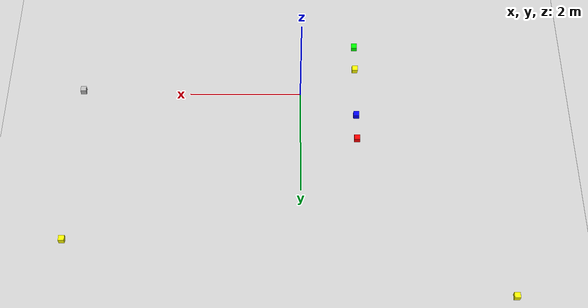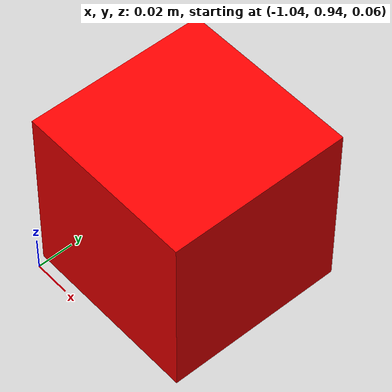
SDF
<sdf version="1.6">
 <world name="empty">
  <physics name="1ms" type="ignored">
   <max_step_size>0.001</max_step_size>
   <real_time_factor>1.0</real_time_factor>
  </physics>
  <plugin filename="ignition-gazebo-contact-system" name="gz::sim::systems::Contact"/>
  <plugin filename="ignition-gazebo-imu-system" name="gz::sim::systems::Imu"/>
  <plugin filename="ignition-gazebo-physics-system" name="gz::sim::systems::Physics"/>
  <plugin filename="ignition-gazebo-scene-broadcaster-system" name="gz::sim::systems::SceneBroadcaster"/>
  <plugin filename="ignition-gazebo-sensors-system" name="gz::sim::systems::Sensors"/>
  <plugin filename="ignition-gazebo-user-commands-system" name="gz::sim::systems::UserCommands"/>
  <model name="camera">
   <pose>4 0 0 0 0.0 3.14</pose>
   <link name="link">
    <pose>0.05 0.05 0.05 0 0 0</pose>
    <inertial>
     <mass>0.1</mass>
     <inertia><ixx>0.000166667</ixx><iyy>0.000166667</iyy><izz>0.000166667</izz></inertia>
    </inertial>
    <collision name="collision"><geometry><box><size>0.1 0.1 0.1</size></box></geometry></collision>
    <visual name="visual"><geometry><box><size>0.1 0.1 0.1</size></box></geometry></visual>
    <sensor name="camera" type="camera">
     <camera>
      <horizontal_fov>1.047</horizontal_fov>
      <image><width>320</width><height>240</height></image>
      <clip><near>0.1</near><far>100</far></clip>
     </camera>
     <always_on>1</always_on>
     <update_rate>30</update_rate>
     <visualize>true</visualize>
     <topic>camera</topic>
    </sensor>
   </link>
  </model>
  <spherical_coordinates>
   <surface_model>EARTH_WGS84</surface_model>
   <world_frame_orientation>ENU</world_frame_orientation>
   <latitude_deg>50.088384</latitude_deg>
   <longitude_deg>19.939128</longitude_deg>
   <elevation>0</elevation>
   <heading_deg>0</heading_deg>
  </spherical_coordinates>
  <light type="directional" name="sun">
   <pose>0 0 10 0 0 0</pose>
   <diffuse>0.8 0.8 0.8 1</diffuse>
   <specular>0.2 0.2 0.2 1</specular>
   <attenuation>
    <range>1000</range>
    <constant>0.9</constant>
    <linear>0.01</linear>
    <quadratic>0.001</quadratic>
   </attenuation>
   <direction>-0.5 0.1 -0.9</direction>
  </light>
  <model name="ground_plane">
   <static>true</static>
   <link name="link">
    <collision name="collision">
     <geometry><plane><normal>0 0 1</normal><size>100 100</size></plane></geometry>
    </collision>
    <visual name="visual">
     <geometry><plane><normal>0 0 1</normal><size>100 100</size></plane></geometry>
     <material>
      <ambient>0.8 0.8 0.8 1</ambient>
      <diffuse>0.8 0.8 0.8 1</diffuse>
      <specular>0.8 0.8 0.8 1</specular>
     </material>
    </visual>
   </link>
  </model>
  <model name="red_cube">
   <pose>-1 1 0.1 0 0 0</pose>
   <static>true</static>
   <link name="link">
    <visual name="visual">
     <geometry><box><size>0.1 0.1 0.1</size></box></geometry>
     <material><ambient>1 0 0 1</ambient><diffuse>1 0 0 1</diffuse><specular>0.1 0.1 0.1 1</specular></material>
    </visual>
   </link>
  </model>
  <model name="blue_cube">
   <pose>-1 0.5 0.1 0 0 0</pose>
   <static>true</static>
   <link name="link">
    <visual name="visual">
     <geometry><box><size>0.1 0.1 0.1</size></box></geometry>
     <material><ambient>0 0 1 1</ambient><diffuse>0 0 1 1</diffuse><specular>0.1 0.1 0.1 1</specular></material>
    </visual>
   </link>
  </model>
  <model name="green_cube">
   <pose>-1 -1 0.1 0 0 0</pose>
   <static>true</static>
   <link name="link">
    <visual name="visual">
     <geometry><box><size>0.1 0.1 0.1</size></box></geometry>
     <material><ambient>0 1 0 1</ambient><diffuse>0 1 0 1</diffuse><specular>0.1 0.1 0.1 1</specular></material>
    </visual>
   </link>
  </model>
  <model name="yellow_cube_1">
   <pose>-1 -0.5 0.1 0 0 0</pose>
   <static>true</static>
   <link name="link">
    <visual name="visual">
     <geometry><box><size>0.1 0.1 0.1</size></box></geometry>
     <material><ambient>1 1 0 1</ambient><diffuse>1 1 0 1</diffuse><specular>0.1 0.1 0.1 1</specular></material>
    </visual>
   </link>
  </model>
  <model name="yellow_cube_2">
   <pose>4 3.0 0.1 0 0 0</pose>
   <static>true</static>
   <link name="link">
    <visual name="visual">
     <geometry><box><size>0.1 0.1 0.1</size></box></geometry>
     <material><ambient>1 1 0 1</ambient><diffuse>1 1 0 1</diffuse><specular>0.1 0.1 0.1 1</specular></material>
    </visual>
   </link>
  </model>
  <model name="yellow_cube_3">
   <pose>-3.5 4.0 0.1 0 0 0</pose>
   <static>true</static>
   <link name="link">
    <visual name="visual">
     <geometry><box><size>0.1 0.1 0.1</size></box></geometry>
     <material><ambient>1 1 0 1</ambient><diffuse>1 1 0 1</diffuse><specular>0.1 0.1 0.1 1</specular></material>
    </visual>
   </link>
  </model>
 </world>
</sdf>
